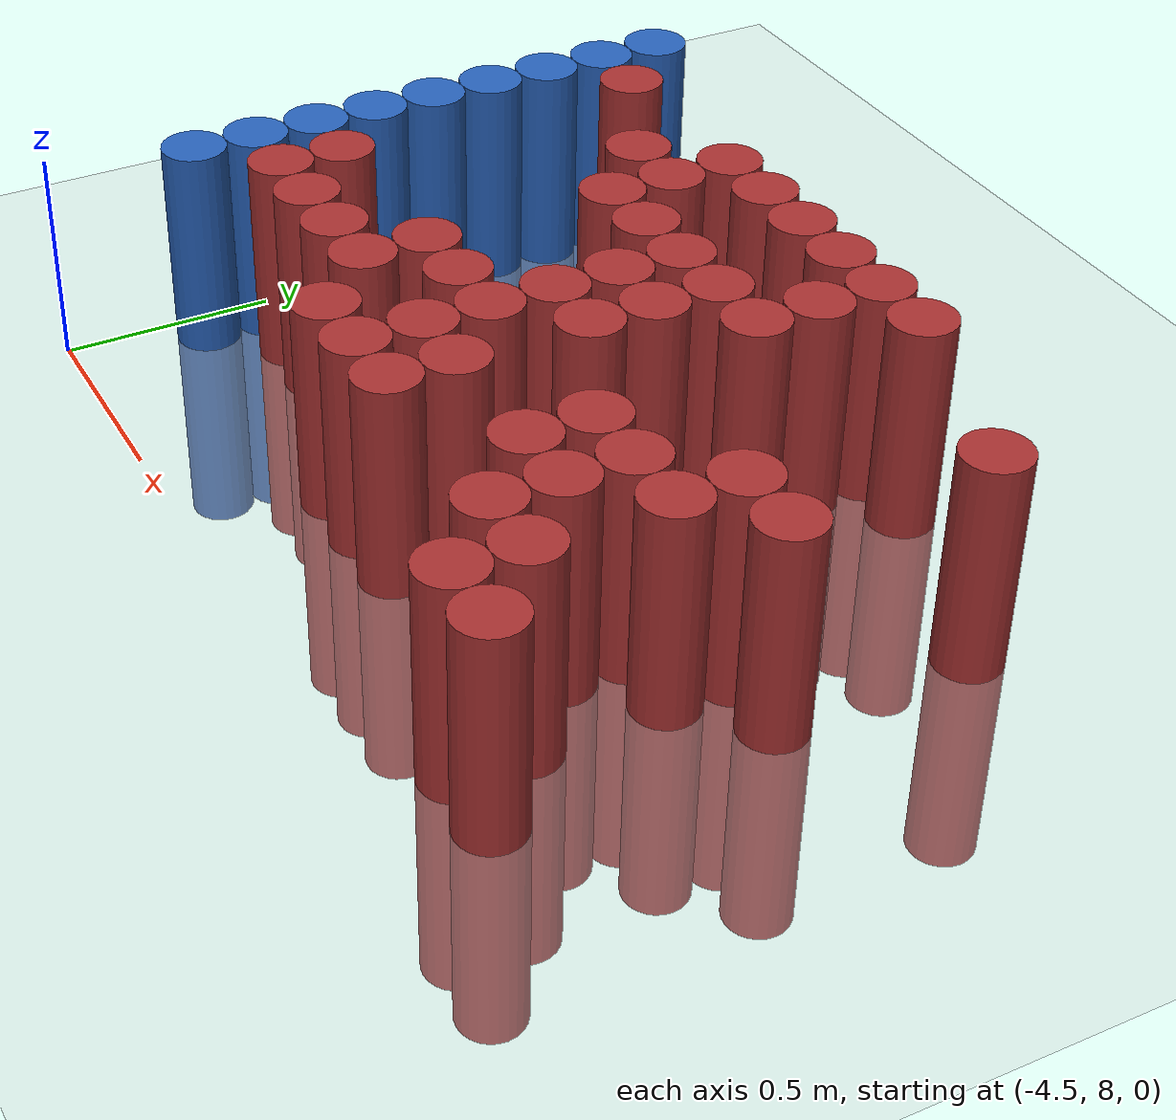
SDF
<sdf version="1.6">
 <world name="default">
  <model name="ground_plane">
   <static>1</static>
   <link name="link">
    <collision name="collision">
     <geometry><plane><normal>0 0 1</normal><size>100 100</size></plane></geometry>
     <surface><friction><ode><mu>100</mu><mu2>50</mu2></ode></friction></surface>
    </collision>
    <visual name="visual">
     <cast_shadows>0</cast_shadows>
     <geometry><plane><normal>0 0 1</normal><size>100 100</size></plane></geometry>
     <material>
      <script><uri>file://media/materials/scripts/gazebo.material</uri><name>Gazebo/Grey</name></script>
     </material>
    </visual>
   </link>
  </model>
  <model name="unit_cylinder_117">
   <static>1</static>
   <pose>-4.425000 8.325000 0.000000 0.000000 0.000000 0.000000</pose>
   <link name="link">
    <inertial>
     <mass>1</mass>
     <inertia><ixx>0.145833</ixx><ixy>0</ixy><ixz>0</ixz><iyy>0.145833</iyy><iyz>0</iyz><izz>0.125</izz></inertia>
    </inertial>
    <collision name="collision">
     <geometry><cylinder><radius>0.075000</radius><length>1</length></cylinder></geometry>
    </collision>
    <visual name="visual">
     <geometry><cylinder><radius>0.075000</radius><length>1</length></cylinder></geometry>
     <material>
      <ambient>0.152000 0.379000 0.720000 1</ambient>
      <diffuse>0.152000 0.379000 0.720000 1</diffuse>
     </material>
     <material>
      <script><name>Gazebo/Grey</name><uri>file://media/materials/scripts/gazebo.material</uri></script>
     </material>
    </visual>
   </link>
  </model>
  <model name="unit_cylinder_118">
   <static>1</static>
   <pose>-4.425000 8.475000 0.000000 0.000000 0.000000 0.000000</pose>
   <link name="link">
    <inertial>
     <mass>1</mass>
     <inertia><ixx>0.145833</ixx><ixy>0</ixy><ixz>0</ixz><iyy>0.145833</iyy><iyz>0</iyz><izz>0.125</izz></inertia>
    </inertial>
    <collision name="collision">
     <geometry><cylinder><radius>0.075000</radius><length>1</length></cylinder></geometry>
    </collision>
    <visual name="visual">
     <geometry><cylinder><radius>0.075000</radius><length>1</length></cylinder></geometry>
     <material>
      <ambient>0.152000 0.379000 0.720000 1</ambient>
      <diffuse>0.152000 0.379000 0.720000 1</diffuse>
     </material>
     <material>
      <script><name>Gazebo/Grey</name><uri>file://media/materials/scripts/gazebo.material</uri></script>
     </material>
    </visual>
   </link>
  </model>
  <model name="unit_cylinder_119">
   <static>1</static>
   <pose>-4.425000 8.625000 0.000000 0.000000 0.000000 0.000000</pose>
   <link name="link">
    <inertial>
     <mass>1</mass>
     <inertia><ixx>0.145833</ixx><ixy>0</ixy><ixz>0</ixz><iyy>0.145833</iyy><iyz>0</iyz><izz>0.125</izz></inertia>
    </inertial>
    <collision name="collision">
     <geometry><cylinder><radius>0.075000</radius><length>1</length></cylinder></geometry>
    </collision>
    <visual name="visual">
     <geometry><cylinder><radius>0.075000</radius><length>1</length></cylinder></geometry>
     <material>
      <ambient>0.152000 0.379000 0.720000 1</ambient>
      <diffuse>0.152000 0.379000 0.720000 1</diffuse>
     </material>
     <material>
      <script><name>Gazebo/Grey</name><uri>file://media/materials/scripts/gazebo.material</uri></script>
     </material>
    </visual>
   </link>
  </model>
  <model name="unit_cylinder_120">
   <static>1</static>
   <pose>-4.425000 8.775000 0.000000 0.000000 0.000000 0.000000</pose>
   <link name="link">
    <inertial>
     <mass>1</mass>
     <inertia><ixx>0.145833</ixx><ixy>0</ixy><ixz>0</ixz><iyy>0.145833</iyy><iyz>0</iyz><izz>0.125</izz></inertia>
    </inertial>
    <collision name="collision">
     <geometry><cylinder><radius>0.075000</radius><length>1</length></cylinder></geometry>
    </collision>
    <visual name="visual">
     <geometry><cylinder><radius>0.075000</radius><length>1</length></cylinder></geometry>
     <material>
      <ambient>0.152000 0.379000 0.720000 1</ambient>
      <diffuse>0.152000 0.379000 0.720000 1</diffuse>
     </material>
     <material>
      <script><name>Gazebo/Grey</name><uri>file://media/materials/scripts/gazebo.material</uri></script>
     </material>
    </visual>
   </link>
  </model>
  <model name="unit_cylinder_121">
   <static>1</static>
   <pose>-4.425000 8.925000 0.000000 0.000000 0.000000 0.000000</pose>
   <link name="link">
    <inertial>
     <mass>1</mass>
     <inertia><ixx>0.145833</ixx><ixy>0</ixy><ixz>0</ixz><iyy>0.145833</iyy><iyz>0</iyz><izz>0.125</izz></inertia>
    </inertial>
    <collision name="collision">
     <geometry><cylinder><radius>0.075000</radius><length>1</length></cylinder></geometry>
    </collision>
    <visual name="visual">
     <geometry><cylinder><radius>0.075000</radius><length>1</length></cylinder></geometry>
     <material>
      <ambient>0.152000 0.379000 0.720000 1</ambient>
      <diffuse>0.152000 0.379000 0.720000 1</diffuse>
     </material>
     <material>
      <script><name>Gazebo/Grey</name><uri>file://media/materials/scripts/gazebo.material</uri></script>
     </material>
    </visual>
   </link>
  </model>
  <model name="unit_cylinder_122">
   <static>1</static>
   <pose>-4.425000 9.075000 0.000000 0.000000 0.000000 0.000000</pose>
   <link name="link">
    <inertial>
     <mass>1</mass>
     <inertia><ixx>0.145833</ixx><ixy>0</ixy><ixz>0</ixz><iyy>0.145833</iyy><iyz>0</iyz><izz>0.125</izz></inertia>
    </inertial>
    <collision name="collision">
     <geometry><cylinder><radius>0.075000</radius><length>1</length></cylinder></geometry>
    </collision>
    <visual name="visual">
     <geometry><cylinder><radius>0.075000</radius><length>1</length></cylinder></geometry>
     <material>
      <ambient>0.152000 0.379000 0.720000 1</ambient>
      <diffuse>0.152000 0.379000 0.720000 1</diffuse>
     </material>
     <material>
      <script><name>Gazebo/Grey</name><uri>file://media/materials/scripts/gazebo.material</uri></script>
     </material>
    </visual>
   </link>
  </model>
  <model name="unit_cylinder_123">
   <static>1</static>
   <pose>-4.425000 9.225000 0.000000 0.000000 0.000000 0.000000</pose>
   <link name="link">
    <inertial>
     <mass>1</mass>
     <inertia><ixx>0.145833</ixx><ixy>0</ixy><ixz>0</ixz><iyy>0.145833</iyy><iyz>0</iyz><izz>0.125</izz></inertia>
    </inertial>
    <collision name="collision">
     <geometry><cylinder><radius>0.075000</radius><length>1</length></cylinder></geometry>
    </collision>
    <visual name="visual">
     <geometry><cylinder><radius>0.075000</radius><length>1</length></cylinder></geometry>
     <material>
      <ambient>0.152000 0.379000 0.720000 1</ambient>
      <diffuse>0.152000 0.379000 0.720000 1</diffuse>
     </material>
     <material>
      <script><name>Gazebo/Grey</name><uri>file://media/materials/scripts/gazebo.material</uri></script>
     </material>
    </visual>
   </link>
  </model>
  <model name="unit_cylinder_124">
   <static>1</static>
   <pose>-4.425000 9.375000 0.000000 0.000000 0.000000 0.000000</pose>
   <link name="link">
    <inertial>
     <mass>1</mass>
     <inertia><ixx>0.145833</ixx><ixy>0</ixy><ixz>0</ixz><iyy>0.145833</iyy><iyz>0</iyz><izz>0.125</izz></inertia>
    </inertial>
    <collision name="collision">
     <geometry><cylinder><radius>0.075000</radius><length>1</length></cylinder></geometry>
    </collision>
    <visual name="visual">
     <geometry><cylinder><radius>0.075000</radius><length>1</length></cylinder></geometry>
     <material>
      <ambient>0.152000 0.379000 0.720000 1</ambient>
      <diffuse>0.152000 0.379000 0.720000 1</diffuse>
     </material>
     <material>
      <script><name>Gazebo/Grey</name><uri>file://media/materials/scripts/gazebo.material</uri></script>
     </material>
    </visual>
   </link>
  </model>
  <model name="unit_cylinder_125">
   <static>1</static>
   <pose>-4.425000 9.525000 0.000000 0.000000 0.000000 0.000000</pose>
   <link name="link">
    <inertial>
     <mass>1</mass>
     <inertia><ixx>0.145833</ixx><ixy>0</ixy><ixz>0</ixz><iyy>0.145833</iyy><iyz>0</iyz><izz>0.125</izz></inertia>
    </inertial>
    <collision name="collision">
     <geometry><cylinder><radius>0.075000</radius><length>1</length></cylinder></geometry>
    </collision>
    <visual name="visual">
     <geometry><cylinder><radius>0.075000</radius><length>1</length></cylinder></geometry>
     <material>
      <ambient>0.152000 0.379000 0.720000 1</ambient>
      <diffuse>0.152000 0.379000 0.720000 1</diffuse>
     </material>
     <material>
      <script><name>Gazebo/Grey</name><uri>file://media/materials/scripts/gazebo.material</uri></script>
     </material>
    </visual>
   </link>
  </model>
  <model name="unit_cylinder_136">
   <static>1</static>
   <pose>-4.275000 8.475000 0.000000 0.000000 0.000000 0.000000</pose>
   <link name="link">
    <inertial>
     <mass>1</mass>
     <inertia><ixx>0.145833</ixx><ixy>0</ixy><ixz>0</ixz><iyy>0.145833</iyy><iyz>0</iyz><izz>0.125</izz></inertia>
    </inertial>
    <collision name="collision">
     <geometry><cylinder><radius>0.075000</radius><length>1</length></cylinder></geometry>
    </collision>
    <visual name="visual">
     <geometry><cylinder><radius>0.075000</radius><length>1</length></cylinder></geometry>
     <material>
      <ambient>0.648000 0.192000 0.192000 1</ambient>
      <diffuse>0.648000 0.192000 0.192000 1</diffuse>
     </material>
     <material>
      <script><name>Gazebo/Grey</name><uri>file://media/materials/scripts/gazebo.material</uri></script>
     </material>
    </visual>
   </link>
  </model>
  <model name="unit_cylinder_137">
   <static>1</static>
   <pose>-4.275000 8.625000 0.000000 0.000000 0.000000 0.000000</pose>
   <link name="link">
    <inertial>
     <mass>1</mass>
     <inertia><ixx>0.145833</ixx><ixy>0</ixy><ixz>0</ixz><iyy>0.145833</iyy><iyz>0</iyz><izz>0.125</izz></inertia>
    </inertial>
    <collision name="collision">
     <geometry><cylinder><radius>0.075000</radius><length>1</length></cylinder></geometry>
    </collision>
    <visual name="visual">
     <geometry><cylinder><radius>0.075000</radius><length>1</length></cylinder></geometry>
     <material>
      <ambient>0.648000 0.192000 0.192000 1</ambient>
      <diffuse>0.648000 0.192000 0.192000 1</diffuse>
     </material>
     <material>
      <script><name>Gazebo/Grey</name><uri>file://media/materials/scripts/gazebo.material</uri></script>
     </material>
    </visual>
   </link>
  </model>
  <model name="unit_cylinder_138">
   <static>1</static>
   <pose>-4.275000 9.375000 0.000000 0.000000 0.000000 0.000000</pose>
   <link name="link">
    <inertial>
     <mass>1</mass>
     <inertia><ixx>0.145833</ixx><ixy>0</ixy><ixz>0</ixz><iyy>0.145833</iyy><iyz>0</iyz><izz>0.125</izz></inertia>
    </inertial>
    <collision name="collision">
     <geometry><cylinder><radius>0.075000</radius><length>1</length></cylinder></geometry>
    </collision>
    <visual name="visual">
     <geometry><cylinder><radius>0.075000</radius><length>1</length></cylinder></geometry>
     <material>
      <ambient>0.648000 0.192000 0.192000 1</ambient>
      <diffuse>0.648000 0.192000 0.192000 1</diffuse>
     </material>
     <material>
      <script><name>Gazebo/Grey</name><uri>file://media/materials/scripts/gazebo.material</uri></script>
     </material>
    </visual>
   </link>
  </model>
  <model name="unit_cylinder_148">
   <static>1</static>
   <pose>-4.125000 8.475000 0.000000 0.000000 0.000000 0.000000</pose>
   <link name="link">
    <inertial>
     <mass>1</mass>
     <inertia><ixx>0.145833</ixx><ixy>0</ixy><ixz>0</ixz><iyy>0.145833</iyy><iyz>0</iyz><izz>0.125</izz></inertia>
    </inertial>
    <collision name="collision">
     <geometry><cylinder><radius>0.075000</radius><length>1</length></cylinder></geometry>
    </collision>
    <visual name="visual">
     <geometry><cylinder><radius>0.075000</radius><length>1</length></cylinder></geometry>
     <material>
      <ambient>0.648000 0.192000 0.192000 1</ambient>
      <diffuse>0.648000 0.192000 0.192000 1</diffuse>
     </material>
     <material>
      <script><name>Gazebo/Grey</name><uri>file://media/materials/scripts/gazebo.material</uri></script>
     </material>
    </visual>
   </link>
  </model>
  <model name="unit_cylinder_157">
   <static>1</static>
   <pose>-3.975000 8.475000 0.000000 0.000000 0.000000 0.000000</pose>
   <link name="link">
    <inertial>
     <mass>1</mass>
     <inertia><ixx>0.145833</ixx><ixy>0</ixy><ixz>0</ixz><iyy>0.145833</iyy><iyz>0</iyz><izz>0.125</izz></inertia>
    </inertial>
    <collision name="collision">
     <geometry><cylinder><radius>0.075000</radius><length>1</length></cylinder></geometry>
    </collision>
    <visual name="visual">
     <geometry><cylinder><radius>0.075000</radius><length>1</length></cylinder></geometry>
     <material>
      <ambient>0.648000 0.192000 0.192000 1</ambient>
      <diffuse>0.648000 0.192000 0.192000 1</diffuse>
     </material>
     <material>
      <script><name>Gazebo/Grey</name><uri>file://media/materials/scripts/gazebo.material</uri></script>
     </material>
    </visual>
   </link>
  </model>
  <model name="unit_cylinder_158">
   <static>1</static>
   <pose>-3.975000 9.225000 0.000000 0.000000 0.000000 0.000000</pose>
   <link name="link">
    <inertial>
     <mass>1</mass>
     <inertia><ixx>0.145833</ixx><ixy>0</ixy><ixz>0</ixz><iyy>0.145833</iyy><iyz>0</iyz><izz>0.125</izz></inertia>
    </inertial>
    <collision name="collision">
     <geometry><cylinder><radius>0.075000</radius><length>1</length></cylinder></geometry>
    </collision>
    <visual name="visual">
     <geometry><cylinder><radius>0.075000</radius><length>1</length></cylinder></geometry>
     <material>
      <ambient>0.648000 0.192000 0.192000 1</ambient>
      <diffuse>0.648000 0.192000 0.192000 1</diffuse>
     </material>
     <material>
      <script><name>Gazebo/Grey</name><uri>file://media/materials/scripts/gazebo.material</uri></script>
     </material>
    </visual>
   </link>
  </model>
  <model name="unit_cylinder_165">
   <static>1</static>
   <pose>-3.825000 8.475000 0.000000 0.000000 0.000000 0.000000</pose>
   <link name="link">
    <inertial>
     <mass>1</mass>
     <inertia><ixx>0.145833</ixx><ixy>0</ixy><ixz>0</ixz><iyy>0.145833</iyy><iyz>0</iyz><izz>0.125</izz></inertia>
    </inertial>
    <collision name="collision">
     <geometry><cylinder><radius>0.075000</radius><length>1</length></cylinder></geometry>
    </collision>
    <visual name="visual">
     <geometry><cylinder><radius>0.075000</radius><length>1</length></cylinder></geometry>
     <material>
      <ambient>0.648000 0.192000 0.192000 1</ambient>
      <diffuse>0.648000 0.192000 0.192000 1</diffuse>
     </material>
     <material>
      <script><name>Gazebo/Grey</name><uri>file://media/materials/scripts/gazebo.material</uri></script>
     </material>
    </visual>
   </link>
  </model>
  <model name="unit_cylinder_166">
   <static>1</static>
   <pose>-3.825000 8.625000 0.000000 0.000000 0.000000 0.000000</pose>
   <link name="link">
    <inertial>
     <mass>1</mass>
     <inertia><ixx>0.145833</ixx><ixy>0</ixy><ixz>0</ixz><iyy>0.145833</iyy><iyz>0</iyz><izz>0.125</izz></inertia>
    </inertial>
    <collision name="collision">
     <geometry><cylinder><radius>0.075000</radius><length>1</length></cylinder></geometry>
    </collision>
    <visual name="visual">
     <geometry><cylinder><radius>0.075000</radius><length>1</length></cylinder></geometry>
     <material>
      <ambient>0.648000 0.192000 0.192000 1</ambient>
      <diffuse>0.648000 0.192000 0.192000 1</diffuse>
     </material>
     <material>
      <script><name>Gazebo/Grey</name><uri>file://media/materials/scripts/gazebo.material</uri></script>
     </material>
    </visual>
   </link>
  </model>
  <model name="unit_cylinder_167">
   <static>1</static>
   <pose>-3.825000 9.075000 0.000000 0.000000 0.000000 0.000000</pose>
   <link name="link">
    <inertial>
     <mass>1</mass>
     <inertia><ixx>0.145833</ixx><ixy>0</ixy><ixz>0</ixz><iyy>0.145833</iyy><iyz>0</iyz><izz>0.125</izz></inertia>
    </inertial>
    <collision name="collision">
     <geometry><cylinder><radius>0.075000</radius><length>1</length></cylinder></geometry>
    </collision>
    <visual name="visual">
     <geometry><cylinder><radius>0.075000</radius><length>1</length></cylinder></geometry>
     <material>
      <ambient>0.648000 0.192000 0.192000 1</ambient>
      <diffuse>0.648000 0.192000 0.192000 1</diffuse>
     </material>
     <material>
      <script><name>Gazebo/Grey</name><uri>file://media/materials/scripts/gazebo.material</uri></script>
     </material>
    </visual>
   </link>
  </model>
  <model name="unit_cylinder_168">
   <static>1</static>
   <pose>-3.825000 9.225000 0.000000 0.000000 0.000000 0.000000</pose>
   <link name="link">
    <inertial>
     <mass>1</mass>
     <inertia><ixx>0.145833</ixx><ixy>0</ixy><ixz>0</ixz><iyy>0.145833</iyy><iyz>0</iyz><izz>0.125</izz></inertia>
    </inertial>
    <collision name="collision">
     <geometry><cylinder><radius>0.075000</radius><length>1</length></cylinder></geometry>
    </collision>
    <visual name="visual">
     <geometry><cylinder><radius>0.075000</radius><length>1</length></cylinder></geometry>
     <material>
      <ambient>0.648000 0.192000 0.192000 1</ambient>
      <diffuse>0.648000 0.192000 0.192000 1</diffuse>
     </material>
     <material>
      <script><name>Gazebo/Grey</name><uri>file://media/materials/scripts/gazebo.material</uri></script>
     </material>
    </visual>
   </link>
  </model>
  <model name="unit_cylinder_169">
   <static>1</static>
   <pose>-3.825000 9.375000 0.000000 0.000000 0.000000 0.000000</pose>
   <link name="link">
    <inertial>
     <mass>1</mass>
     <inertia><ixx>0.145833</ixx><ixy>0</ixy><ixz>0</ixz><iyy>0.145833</iyy><iyz>0</iyz><izz>0.125</izz></inertia>
    </inertial>
    <collision name="collision">
     <geometry><cylinder><radius>0.075000</radius><length>1</length></cylinder></geometry>
    </collision>
    <visual name="visual">
     <geometry><cylinder><radius>0.075000</radius><length>1</length></cylinder></geometry>
     <material>
      <ambient>0.648000 0.192000 0.192000 1</ambient>
      <diffuse>0.648000 0.192000 0.192000 1</diffuse>
     </material>
     <material>
      <script><name>Gazebo/Grey</name><uri>file://media/materials/scripts/gazebo.material</uri></script>
     </material>
    </visual>
   </link>
  </model>
  <model name="unit_cylinder_176">
   <static>1</static>
   <pose>-3.675000 8.325000 0.000000 0.000000 0.000000 0.000000</pose>
   <link name="link">
    <inertial>
     <mass>1</mass>
     <inertia><ixx>0.145833</ixx><ixy>0</ixy><ixz>0</ixz><iyy>0.145833</iyy><iyz>0</iyz><izz>0.125</izz></inertia>
    </inertial>
    <collision name="collision">
     <geometry><cylinder><radius>0.075000</radius><length>1</length></cylinder></geometry>
    </collision>
    <visual name="visual">
     <geometry><cylinder><radius>0.075000</radius><length>1</length></cylinder></geometry>
     <material>
      <ambient>0.648000 0.192000 0.192000 1</ambient>
      <diffuse>0.648000 0.192000 0.192000 1</diffuse>
     </material>
     <material>
      <script><name>Gazebo/Grey</name><uri>file://media/materials/scripts/gazebo.material</uri></script>
     </material>
    </visual>
   </link>
  </model>
  <model name="unit_cylinder_177">
   <static>1</static>
   <pose>-3.675000 8.625000 0.000000 0.000000 0.000000 0.000000</pose>
   <link name="link">
    <inertial>
     <mass>1</mass>
     <inertia><ixx>0.145833</ixx><ixy>0</ixy><ixz>0</ixz><iyy>0.145833</iyy><iyz>0</iyz><izz>0.125</izz></inertia>
    </inertial>
    <collision name="collision">
     <geometry><cylinder><radius>0.075000</radius><length>1</length></cylinder></geometry>
    </collision>
    <visual name="visual">
     <geometry><cylinder><radius>0.075000</radius><length>1</length></cylinder></geometry>
     <material>
      <ambient>0.648000 0.192000 0.192000 1</ambient>
      <diffuse>0.648000 0.192000 0.192000 1</diffuse>
     </material>
     <material>
      <script><name>Gazebo/Grey</name><uri>file://media/materials/scripts/gazebo.material</uri></script>
     </material>
    </visual>
   </link>
  </model>
  <model name="unit_cylinder_178">
   <static>1</static>
   <pose>-3.675000 9.075000 0.000000 0.000000 0.000000 0.000000</pose>
   <link name="link">
    <inertial>
     <mass>1</mass>
     <inertia><ixx>0.145833</ixx><ixy>0</ixy><ixz>0</ixz><iyy>0.145833</iyy><iyz>0</iyz><izz>0.125</izz></inertia>
    </inertial>
    <collision name="collision">
     <geometry><cylinder><radius>0.075000</radius><length>1</length></cylinder></geometry>
    </collision>
    <visual name="visual">
     <geometry><cylinder><radius>0.075000</radius><length>1</length></cylinder></geometry>
     <material>
      <ambient>0.648000 0.192000 0.192000 1</ambient>
      <diffuse>0.648000 0.192000 0.192000 1</diffuse>
     </material>
     <material>
      <script><name>Gazebo/Grey</name><uri>file://media/materials/scripts/gazebo.material</uri></script>
     </material>
    </visual>
   </link>
  </model>
  <model name="unit_cylinder_179">
   <static>1</static>
   <pose>-3.675000 9.375000 0.000000 0.000000 0.000000 0.000000</pose>
   <link name="link">
    <inertial>
     <mass>1</mass>
     <inertia><ixx>0.145833</ixx><ixy>0</ixy><ixz>0</ixz><iyy>0.145833</iyy><iyz>0</iyz><izz>0.125</izz></inertia>
    </inertial>
    <collision name="collision">
     <geometry><cylinder><radius>0.075000</radius><length>1</length></cylinder></geometry>
    </collision>
    <visual name="visual">
     <geometry><cylinder><radius>0.075000</radius><length>1</length></cylinder></geometry>
     <material>
      <ambient>0.648000 0.192000 0.192000 1</ambient>
      <diffuse>0.648000 0.192000 0.192000 1</diffuse>
     </material>
     <material>
      <script><name>Gazebo/Grey</name><uri>file://media/materials/scripts/gazebo.material</uri></script>
     </material>
    </visual>
   </link>
  </model>
  <model name="unit_cylinder_183">
   <static>1</static>
   <pose>-3.525000 8.325000 0.000000 0.000000 0.000000 0.000000</pose>
   <link name="link">
    <inertial>
     <mass>1</mass>
     <inertia><ixx>0.145833</ixx><ixy>0</ixy><ixz>0</ixz><iyy>0.145833</iyy><iyz>0</iyz><izz>0.125</izz></inertia>
    </inertial>
    <collision name="collision">
     <geometry><cylinder><radius>0.075000</radius><length>1</length></cylinder></geometry>
    </collision>
    <visual name="visual">
     <geometry><cylinder><radius>0.075000</radius><length>1</length></cylinder></geometry>
     <material>
      <ambient>0.648000 0.192000 0.192000 1</ambient>
      <diffuse>0.648000 0.192000 0.192000 1</diffuse>
     </material>
     <material>
      <script><name>Gazebo/Grey</name><uri>file://media/materials/scripts/gazebo.material</uri></script>
     </material>
    </visual>
   </link>
  </model>
  <model name="unit_cylinder_184">
   <static>1</static>
   <pose>-3.525000 8.475000 0.000000 0.000000 0.000000 0.000000</pose>
   <link name="link">
    <inertial>
     <mass>1</mass>
     <inertia><ixx>0.145833</ixx><ixy>0</ixy><ixz>0</ixz><iyy>0.145833</iyy><iyz>0</iyz><izz>0.125</izz></inertia>
    </inertial>
    <collision name="collision">
     <geometry><cylinder><radius>0.075000</radius><length>1</length></cylinder></geometry>
    </collision>
    <visual name="visual">
     <geometry><cylinder><radius>0.075000</radius><length>1</length></cylinder></geometry>
     <material>
      <ambient>0.648000 0.192000 0.192000 1</ambient>
      <diffuse>0.648000 0.192000 0.192000 1</diffuse>
     </material>
     <material>
      <script><name>Gazebo/Grey</name><uri>file://media/materials/scripts/gazebo.material</uri></script>
     </material>
    </visual>
   </link>
  </model>
  <model name="unit_cylinder_185">
   <static>1</static>
   <pose>-3.525000 8.625000 0.000000 0.000000 0.000000 0.000000</pose>
   <link name="link">
    <inertial>
     <mass>1</mass>
     <inertia><ixx>0.145833</ixx><ixy>0</ixy><ixz>0</ixz><iyy>0.145833</iyy><iyz>0</iyz><izz>0.125</izz></inertia>
    </inertial>
    <collision name="collision">
     <geometry><cylinder><radius>0.075000</radius><length>1</length></cylinder></geometry>
    </collision>
    <visual name="visual">
     <geometry><cylinder><radius>0.075000</radius><length>1</length></cylinder></geometry>
     <material>
      <ambient>0.648000 0.192000 0.192000 1</ambient>
      <diffuse>0.648000 0.192000 0.192000 1</diffuse>
     </material>
     <material>
      <script><name>Gazebo/Grey</name><uri>file://media/materials/scripts/gazebo.material</uri></script>
     </material>
    </visual>
   </link>
  </model>
  <model name="unit_cylinder_186">
   <static>1</static>
   <pose>-3.525000 8.775000 0.000000 0.000000 0.000000 0.000000</pose>
   <link name="link">
    <inertial>
     <mass>1</mass>
     <inertia><ixx>0.145833</ixx><ixy>0</ixy><ixz>0</ixz><iyy>0.145833</iyy><iyz>0</iyz><izz>0.125</izz></inertia>
    </inertial>
    <collision name="collision">
     <geometry><cylinder><radius>0.075000</radius><length>1</length></cylinder></geometry>
    </collision>
    <visual name="visual">
     <geometry><cylinder><radius>0.075000</radius><length>1</length></cylinder></geometry>
     <material>
      <ambient>0.648000 0.192000 0.192000 1</ambient>
      <diffuse>0.648000 0.192000 0.192000 1</diffuse>
     </material>
     <material>
      <script><name>Gazebo/Grey</name><uri>file://media/materials/scripts/gazebo.material</uri></script>
     </material>
    </visual>
   </link>
  </model>
  <model name="unit_cylinder_187">
   <static>1</static>
   <pose>-3.525000 8.925000 0.000000 0.000000 0.000000 0.000000</pose>
   <link name="link">
    <inertial>
     <mass>1</mass>
     <inertia><ixx>0.145833</ixx><ixy>0</ixy><ixz>0</ixz><iyy>0.145833</iyy><iyz>0</iyz><izz>0.125</izz></inertia>
    </inertial>
    <collision name="collision">
     <geometry><cylinder><radius>0.075000</radius><length>1</length></cylinder></geometry>
    </collision>
    <visual name="visual">
     <geometry><cylinder><radius>0.075000</radius><length>1</length></cylinder></geometry>
     <material>
      <ambient>0.648000 0.192000 0.192000 1</ambient>
      <diffuse>0.648000 0.192000 0.192000 1</diffuse>
     </material>
     <material>
      <script><name>Gazebo/Grey</name><uri>file://media/materials/scripts/gazebo.material</uri></script>
     </material>
    </visual>
   </link>
  </model>
  <model name="unit_cylinder_188">
   <static>1</static>
   <pose>-3.525000 9.075000 0.000000 0.000000 0.000000 0.000000</pose>
   <link name="link">
    <inertial>
     <mass>1</mass>
     <inertia><ixx>0.145833</ixx><ixy>0</ixy><ixz>0</ixz><iyy>0.145833</iyy><iyz>0</iyz><izz>0.125</izz></inertia>
    </inertial>
    <collision name="collision">
     <geometry><cylinder><radius>0.075000</radius><length>1</length></cylinder></geometry>
    </collision>
    <visual name="visual">
     <geometry><cylinder><radius>0.075000</radius><length>1</length></cylinder></geometry>
     <material>
      <ambient>0.648000 0.192000 0.192000 1</ambient>
      <diffuse>0.648000 0.192000 0.192000 1</diffuse>
     </material>
     <material>
      <script><name>Gazebo/Grey</name><uri>file://media/materials/scripts/gazebo.material</uri></script>
     </material>
    </visual>
   </link>
  </model>
  <model name="unit_cylinder_189">
   <static>1</static>
   <pose>-3.525000 9.375000 0.000000 0.000000 0.000000 0.000000</pose>
   <link name="link">
    <inertial>
     <mass>1</mass>
     <inertia><ixx>0.145833</ixx><ixy>0</ixy><ixz>0</ixz><iyy>0.145833</iyy><iyz>0</iyz><izz>0.125</izz></inertia>
    </inertial>
    <collision name="collision">
     <geometry><cylinder><radius>0.075000</radius><length>1</length></cylinder></geometry>
    </collision>
    <visual name="visual">
     <geometry><cylinder><radius>0.075000</radius><length>1</length></cylinder></geometry>
     <material>
      <ambient>0.648000 0.192000 0.192000 1</ambient>
      <diffuse>0.648000 0.192000 0.192000 1</diffuse>
     </material>
     <material>
      <script><name>Gazebo/Grey</name><uri>file://media/materials/scripts/gazebo.material</uri></script>
     </material>
    </visual>
   </link>
  </model>
  <model name="unit_cylinder_191">
   <static>1</static>
   <pose>-3.375000 8.325000 0.000000 0.000000 0.000000 0.000000</pose>
   <link name="link">
    <inertial>
     <mass>1</mass>
     <inertia><ixx>0.145833</ixx><ixy>0</ixy><ixz>0</ixz><iyy>0.145833</iyy><iyz>0</iyz><izz>0.125</izz></inertia>
    </inertial>
    <collision name="collision">
     <geometry><cylinder><radius>0.075000</radius><length>1</length></cylinder></geometry>
    </collision>
    <visual name="visual">
     <geometry><cylinder><radius>0.075000</radius><length>1</length></cylinder></geometry>
     <material>
      <ambient>0.648000 0.192000 0.192000 1</ambient>
      <diffuse>0.648000 0.192000 0.192000 1</diffuse>
     </material>
     <material>
      <script><name>Gazebo/Grey</name><uri>file://media/materials/scripts/gazebo.material</uri></script>
     </material>
    </visual>
   </link>
  </model>
  <model name="unit_cylinder_192">
   <static>1</static>
   <pose>-3.375000 8.475000 0.000000 0.000000 0.000000 0.000000</pose>
   <link name="link">
    <inertial>
     <mass>1</mass>
     <inertia><ixx>0.145833</ixx><ixy>0</ixy><ixz>0</ixz><iyy>0.145833</iyy><iyz>0</iyz><izz>0.125</izz></inertia>
    </inertial>
    <collision name="collision">
     <geometry><cylinder><radius>0.075000</radius><length>1</length></cylinder></geometry>
    </collision>
    <visual name="visual">
     <geometry><cylinder><radius>0.075000</radius><length>1</length></cylinder></geometry>
     <material>
      <ambient>0.648000 0.192000 0.192000 1</ambient>
      <diffuse>0.648000 0.192000 0.192000 1</diffuse>
     </material>
     <material>
      <script><name>Gazebo/Grey</name><uri>file://media/materials/scripts/gazebo.material</uri></script>
     </material>
    </visual>
   </link>
  </model>
  <model name="unit_cylinder_193">
   <static>1</static>
   <pose>-3.375000 8.775000 0.000000 0.000000 0.000000 0.000000</pose>
   <link name="link">
    <inertial>
     <mass>1</mass>
     <inertia><ixx>0.145833</ixx><ixy>0</ixy><ixz>0</ixz><iyy>0.145833</iyy><iyz>0</iyz><izz>0.125</izz></inertia>
    </inertial>
    <collision name="collision">
     <geometry><cylinder><radius>0.075000</radius><length>1</length></cylinder></geometry>
    </collision>
    <visual name="visual">
     <geometry><cylinder><radius>0.075000</radius><length>1</length></cylinder></geometry>
     <material>
      <ambient>0.648000 0.192000 0.192000 1</ambient>
      <diffuse>0.648000 0.192000 0.192000 1</diffuse>
     </material>
     <material>
      <script><name>Gazebo/Grey</name><uri>file://media/materials/scripts/gazebo.material</uri></script>
     </material>
    </visual>
   </link>
  </model>
  <model name="unit_cylinder_194">
   <static>1</static>
   <pose>-3.375000 8.925000 0.000000 0.000000 0.000000 0.000000</pose>
   <link name="link">
    <inertial>
     <mass>1</mass>
     <inertia><ixx>0.145833</ixx><ixy>0</ixy><ixz>0</ixz><iyy>0.145833</iyy><iyz>0</iyz><izz>0.125</izz></inertia>
    </inertial>
    <collision name="collision">
     <geometry><cylinder><radius>0.075000</radius><length>1</length></cylinder></geometry>
    </collision>
    <visual name="visual">
     <geometry><cylinder><radius>0.075000</radius><length>1</length></cylinder></geometry>
     <material>
      <ambient>0.648000 0.192000 0.192000 1</ambient>
      <diffuse>0.648000 0.192000 0.192000 1</diffuse>
     </material>
     <material>
      <script><name>Gazebo/Grey</name><uri>file://media/materials/scripts/gazebo.material</uri></script>
     </material>
    </visual>
   </link>
  </model>
  <model name="unit_cylinder_195">
   <static>1</static>
   <pose>-3.375000 9.075000 0.000000 0.000000 0.000000 0.000000</pose>
   <link name="link">
    <inertial>
     <mass>1</mass>
     <inertia><ixx>0.145833</ixx><ixy>0</ixy><ixz>0</ixz><iyy>0.145833</iyy><iyz>0</iyz><izz>0.125</izz></inertia>
    </inertial>
    <collision name="collision">
     <geometry><cylinder><radius>0.075000</radius><length>1</length></cylinder></geometry>
    </collision>
    <visual name="visual">
     <geometry><cylinder><radius>0.075000</radius><length>1</length></cylinder></geometry>
     <material>
      <ambient>0.648000 0.192000 0.192000 1</ambient>
      <diffuse>0.648000 0.192000 0.192000 1</diffuse>
     </material>
     <material>
      <script><name>Gazebo/Grey</name><uri>file://media/materials/scripts/gazebo.material</uri></script>
     </material>
    </visual>
   </link>
  </model>
  <model name="unit_cylinder_196">
   <static>1</static>
   <pose>-3.375000 9.375000 0.000000 0.000000 0.000000 0.000000</pose>
   <link name="link">
    <inertial>
     <mass>1</mass>
     <inertia><ixx>0.145833</ixx><ixy>0</ixy><ixz>0</ixz><iyy>0.145833</iyy><iyz>0</iyz><izz>0.125</izz></inertia>
    </inertial>
    <collision name="collision">
     <geometry><cylinder><radius>0.075000</radius><length>1</length></cylinder></geometry>
    </collision>
    <visual name="visual">
     <geometry><cylinder><radius>0.075000</radius><length>1</length></cylinder></geometry>
     <material>
      <ambient>0.648000 0.192000 0.192000 1</ambient>
      <diffuse>0.648000 0.192000 0.192000 1</diffuse>
     </material>
     <material>
      <script><name>Gazebo/Grey</name><uri>file://media/materials/scripts/gazebo.material</uri></script>
     </material>
    </visual>
   </link>
  </model>
  <model name="unit_cylinder_200">
   <static>1</static>
   <pose>-3.225000 9.075000 0.000000 0.000000 0.000000 0.000000</pose>
   <link name="link">
    <inertial>
     <mass>1</mass>
     <inertia><ixx>0.145833</ixx><ixy>0</ixy><ixz>0</ixz><iyy>0.145833</iyy><iyz>0</iyz><izz>0.125</izz></inertia>
    </inertial>
    <collision name="collision">
     <geometry><cylinder><radius>0.075000</radius><length>1</length></cylinder></geometry>
    </collision>
    <visual name="visual">
     <geometry><cylinder><radius>0.075000</radius><length>1</length></cylinder></geometry>
     <material>
      <ambient>0.648000 0.192000 0.192000 1</ambient>
      <diffuse>0.648000 0.192000 0.192000 1</diffuse>
     </material>
     <material>
      <script><name>Gazebo/Grey</name><uri>file://media/materials/scripts/gazebo.material</uri></script>
     </material>
    </visual>
   </link>
  </model>
  <model name="unit_cylinder_201">
   <static>1</static>
   <pose>-3.225000 9.225000 0.000000 0.000000 0.000000 0.000000</pose>
   <link name="link">
    <inertial>
     <mass>1</mass>
     <inertia><ixx>0.145833</ixx><ixy>0</ixy><ixz>0</ixz><iyy>0.145833</iyy><iyz>0</iyz><izz>0.125</izz></inertia>
    </inertial>
    <collision name="collision">
     <geometry><cylinder><radius>0.075000</radius><length>1</length></cylinder></geometry>
    </collision>
    <visual name="visual">
     <geometry><cylinder><radius>0.075000</radius><length>1</length></cylinder></geometry>
     <material>
      <ambient>0.648000 0.192000 0.192000 1</ambient>
      <diffuse>0.648000 0.192000 0.192000 1</diffuse>
     </material>
     <material>
      <script><name>Gazebo/Grey</name><uri>file://media/materials/scripts/gazebo.material</uri></script>
     </material>
    </visual>
   </link>
  </model>
  <model name="unit_cylinder_202">
   <static>1</static>
   <pose>-3.225000 9.375000 0.000000 0.000000 0.000000 0.000000</pose>
   <link name="link">
    <inertial>
     <mass>1</mass>
     <inertia><ixx>0.145833</ixx><ixy>0</ixy><ixz>0</ixz><iyy>0.145833</iyy><iyz>0</iyz><izz>0.125</izz></inertia>
    </inertial>
    <collision name="collision">
     <geometry><cylinder><radius>0.075000</radius><length>1</length></cylinder></geometry>
    </collision>
    <visual name="visual">
     <geometry><cylinder><radius>0.075000</radius><length>1</length></cylinder></geometry>
     <material>
      <ambient>0.648000 0.192000 0.192000 1</ambient>
      <diffuse>0.648000 0.192000 0.192000 1</diffuse>
     </material>
     <material>
      <script><name>Gazebo/Grey</name><uri>file://media/materials/scripts/gazebo.material</uri></script>
     </material>
    </visual>
   </link>
  </model>
  <model name="unit_cylinder_207">
   <static>1</static>
   <pose>-3.075000 8.475000 0.000000 0.000000 0.000000 0.000000</pose>
   <link name="link">
    <inertial>
     <mass>1</mass>
     <inertia><ixx>0.145833</ixx><ixy>0</ixy><ixz>0</ixz><iyy>0.145833</iyy><iyz>0</iyz><izz>0.125</izz></inertia>
    </inertial>
    <collision name="collision">
     <geometry><cylinder><radius>0.075000</radius><length>1</length></cylinder></geometry>
    </collision>
    <visual name="visual">
     <geometry><cylinder><radius>0.075000</radius><length>1</length></cylinder></geometry>
     <material>
      <ambient>0.648000 0.192000 0.192000 1</ambient>
      <diffuse>0.648000 0.192000 0.192000 1</diffuse>
     </material>
     <material>
      <script><name>Gazebo/Grey</name><uri>file://media/materials/scripts/gazebo.material</uri></script>
     </material>
    </visual>
   </link>
  </model>
  <model name="unit_cylinder_208">
   <static>1</static>
   <pose>-3.075000 8.625000 0.000000 0.000000 0.000000 0.000000</pose>
   <link name="link">
    <inertial>
     <mass>1</mass>
     <inertia><ixx>0.145833</ixx><ixy>0</ixy><ixz>0</ixz><iyy>0.145833</iyy><iyz>0</iyz><izz>0.125</izz></inertia>
    </inertial>
    <collision name="collision">
     <geometry><cylinder><radius>0.075000</radius><length>1</length></cylinder></geometry>
    </collision>
    <visual name="visual">
     <geometry><cylinder><radius>0.075000</radius><length>1</length></cylinder></geometry>
     <material>
      <ambient>0.648000 0.192000 0.192000 1</ambient>
      <diffuse>0.648000 0.192000 0.192000 1</diffuse>
     </material>
     <material>
      <script><name>Gazebo/Grey</name><uri>file://media/materials/scripts/gazebo.material</uri></script>
     </material>
    </visual>
   </link>
  </model>
  <model name="unit_cylinder_209">
   <static>1</static>
   <pose>-3.075000 9.375000 0.000000 0.000000 0.000000 0.000000</pose>
   <link name="link">
    <inertial>
     <mass>1</mass>
     <inertia><ixx>0.145833</ixx><ixy>0</ixy><ixz>0</ixz><iyy>0.145833</iyy><iyz>0</iyz><izz>0.125</izz></inertia>
    </inertial>
    <collision name="collision">
     <geometry><cylinder><radius>0.075000</radius><length>1</length></cylinder></geometry>
    </collision>
    <visual name="visual">
     <geometry><cylinder><radius>0.075000</radius><length>1</length></cylinder></geometry>
     <material>
      <ambient>0.648000 0.192000 0.192000 1</ambient>
      <diffuse>0.648000 0.192000 0.192000 1</diffuse>
     </material>
     <material>
      <script><name>Gazebo/Grey</name><uri>file://media/materials/scripts/gazebo.material</uri></script>
     </material>
    </visual>
   </link>
  </model>
  <model name="unit_cylinder_219">
   <static>1</static>
   <pose>-2.925000 8.325000 0.000000 0.000000 0.000000 0.000000</pose>
   <link name="link">
    <inertial>
     <mass>1</mass>
     <inertia><ixx>0.145833</ixx><ixy>0</ixy><ixz>0</ixz><iyy>0.145833</iyy><iyz>0</iyz><izz>0.125</izz></inertia>
    </inertial>
    <collision name="collision">
     <geometry><cylinder><radius>0.075000</radius><length>1</length></cylinder></geometry>
    </collision>
    <visual name="visual">
     <geometry><cylinder><radius>0.075000</radius><length>1</length></cylinder></geometry>
     <material>
      <ambient>0.648000 0.192000 0.192000 1</ambient>
      <diffuse>0.648000 0.192000 0.192000 1</diffuse>
     </material>
     <material>
      <script><name>Gazebo/Grey</name><uri>file://media/materials/scripts/gazebo.material</uri></script>
     </material>
    </visual>
   </link>
  </model>
  <model name="unit_cylinder_220">
   <static>1</static>
   <pose>-2.925000 8.475000 0.000000 0.000000 0.000000 0.000000</pose>
   <link name="link">
    <inertial>
     <mass>1</mass>
     <inertia><ixx>0.145833</ixx><ixy>0</ixy><ixz>0</ixz><iyy>0.145833</iyy><iyz>0</iyz><izz>0.125</izz></inertia>
    </inertial>
    <collision name="collision">
     <geometry><cylinder><radius>0.075000</radius><length>1</length></cylinder></geometry>
    </collision>
    <visual name="visual">
     <geometry><cylinder><radius>0.075000</radius><length>1</length></cylinder></geometry>
     <material>
      <ambient>0.648000 0.192000 0.192000 1</ambient>
      <diffuse>0.648000 0.192000 0.192000 1</diffuse>
     </material>
     <material>
      <script><name>Gazebo/Grey</name><uri>file://media/materials/scripts/gazebo.material</uri></script>
     </material>
    </visual>
   </link>
  </model>
  <model name="unit_cylinder_221">
   <static>1</static>
   <pose>-2.925000 8.625000 0.000000 0.000000 0.000000 0.000000</pose>
   <link name="link">
    <inertial>
     <mass>1</mass>
     <inertia><ixx>0.145833</ixx><ixy>0</ixy><ixz>0</ixz><iyy>0.145833</iyy><iyz>0</iyz><izz>0.125</izz></inertia>
    </inertial>
    <collision name="collision">
     <geometry><cylinder><radius>0.075000</radius><length>1</length></cylinder></geometry>
    </collision>
    <visual name="visual">
     <geometry><cylinder><radius>0.075000</radius><length>1</length></cylinder></geometry>
     <material>
      <ambient>0.648000 0.192000 0.192000 1</ambient>
      <diffuse>0.648000 0.192000 0.192000 1</diffuse>
     </material>
     <material>
      <script><name>Gazebo/Grey</name><uri>file://media/materials/scripts/gazebo.material</uri></script>
     </material>
    </visual>
   </link>
  </model>
  <model name="unit_cylinder_229">
   <static>1</static>
   <pose>-2.775000 8.175000 0.000000 0.000000 0.000000 0.000000</pose>
   <link name="link">
    <inertial>
     <mass>1</mass>
     <inertia><ixx>0.145833</ixx><ixy>0</ixy><ixz>0</ixz><iyy>0.145833</iyy><iyz>0</iyz><izz>0.125</izz></inertia>
    </inertial>
    <collision name="collision">
     <geometry><cylinder><radius>0.075000</radius><length>1</length></cylinder></geometry>
    </collision>
    <visual name="visual">
     <geometry><cylinder><radius>0.075000</radius><length>1</length></cylinder></geometry>
     <material>
      <ambient>0.648000 0.192000 0.192000 1</ambient>
      <diffuse>0.648000 0.192000 0.192000 1</diffuse>
     </material>
     <material>
      <script><name>Gazebo/Grey</name><uri>file://media/materials/scripts/gazebo.material</uri></script>
     </material>
    </visual>
   </link>
  </model>
  <model name="unit_cylinder_230">
   <static>1</static>
   <pose>-2.775000 8.325000 0.000000 0.000000 0.000000 0.000000</pose>
   <link name="link">
    <inertial>
     <mass>1</mass>
     <inertia><ixx>0.145833</ixx><ixy>0</ixy><ixz>0</ixz><iyy>0.145833</iyy><iyz>0</iyz><izz>0.125</izz></inertia>
    </inertial>
    <collision name="collision">
     <geometry><cylinder><radius>0.075000</radius><length>1</length></cylinder></geometry>
    </collision>
    <visual name="visual">
     <geometry><cylinder><radius>0.075000</radius><length>1</length></cylinder></geometry>
     <material>
      <ambient>0.648000 0.192000 0.192000 1</ambient>
      <diffuse>0.648000 0.192000 0.192000 1</diffuse>
     </material>
     <material>
      <script><name>Gazebo/Grey</name><uri>file://media/materials/scripts/gazebo.material</uri></script>
     </material>
    </visual>
   </link>
  </model>
  <model name="unit_cylinder_231">
   <static>1</static>
   <pose>-2.775000 8.625000 0.000000 0.000000 0.000000 0.000000</pose>
   <link name="link">
    <inertial>
     <mass>1</mass>
     <inertia><ixx>0.145833</ixx><ixy>0</ixy><ixz>0</ixz><iyy>0.145833</iyy><iyz>0</iyz><izz>0.125</izz></inertia>
    </inertial>
    <collision name="collision">
     <geometry><cylinder><radius>0.075000</radius><length>1</length></cylinder></geometry>
    </collision>
    <visual name="visual">
     <geometry><cylinder><radius>0.075000</radius><length>1</length></cylinder></geometry>
     <material>
      <ambient>0.648000 0.192000 0.192000 1</ambient>
      <diffuse>0.648000 0.192000 0.192000 1</diffuse>
     </material>
     <material>
      <script><name>Gazebo/Grey</name><uri>file://media/materials/scripts/gazebo.material</uri></script>
     </material>
    </visual>
   </link>
  </model>
  <model name="unit_cylinder_232">
   <static>1</static>
   <pose>-2.775000 8.775000 0.000000 0.000000 0.000000 0.000000</pose>
   <link name="link">
    <inertial>
     <mass>1</mass>
     <inertia><ixx>0.145833</ixx><ixy>0</ixy><ixz>0</ixz><iyy>0.145833</iyy><iyz>0</iyz><izz>0.125</izz></inertia>
    </inertial>
    <collision name="collision">
     <geometry><cylinder><radius>0.075000</radius><length>1</length></cylinder></geometry>
    </collision>
    <visual name="visual">
     <geometry><cylinder><radius>0.075000</radius><length>1</length></cylinder></geometry>
     <material>
      <ambient>0.648000 0.192000 0.192000 1</ambient>
      <diffuse>0.648000 0.192000 0.192000 1</diffuse>
     </material>
     <material>
      <script><name>Gazebo/Grey</name><uri>file://media/materials/scripts/gazebo.material</uri></script>
     </material>
    </visual>
   </link>
  </model>
  <model name="unit_cylinder_237">
   <static>1</static>
   <pose>-2.625000 8.175000 0.000000 0.000000 0.000000 0.000000</pose>
   <link name="link">
    <inertial>
     <mass>1</mass>
     <inertia><ixx>0.145833</ixx><ixy>0</ixy><ixz>0</ixz><iyy>0.145833</iyy><iyz>0</iyz><izz>0.125</izz></inertia>
    </inertial>
    <collision name="collision">
     <geometry><cylinder><radius>0.075000</radius><length>1</length></cylinder></geometry>
    </collision>
    <visual name="visual">
     <geometry><cylinder><radius>0.075000</radius><length>1</length></cylinder></geometry>
     <material>
      <ambient>0.648000 0.192000 0.192000 1</ambient>
      <diffuse>0.648000 0.192000 0.192000 1</diffuse>
     </material>
     <material>
      <script><name>Gazebo/Grey</name><uri>file://media/materials/scripts/gazebo.material</uri></script>
     </material>
    </visual>
   </link>
  </model>
  <model name="unit_cylinder_238">
   <static>1</static>
   <pose>-2.625000 8.775000 0.000000 0.000000 0.000000 0.000000</pose>
   <link name="link">
    <inertial>
     <mass>1</mass>
     <inertia><ixx>0.145833</ixx><ixy>0</ixy><ixz>0</ixz><iyy>0.145833</iyy><iyz>0</iyz><izz>0.125</izz></inertia>
    </inertial>
    <collision name="collision">
     <geometry><cylinder><radius>0.075000</radius><length>1</length></cylinder></geometry>
    </collision>
    <visual name="visual">
     <geometry><cylinder><radius>0.075000</radius><length>1</length></cylinder></geometry>
     <material>
      <ambient>0.648000 0.192000 0.192000 1</ambient>
      <diffuse>0.648000 0.192000 0.192000 1</diffuse>
     </material>
     <material>
      <script><name>Gazebo/Grey</name><uri>file://media/materials/scripts/gazebo.material</uri></script>
     </material>
    </visual>
   </link>
  </model>
  <model name="unit_cylinder_239">
   <static>1</static>
   <pose>-2.625000 9.225000 0.000000 0.000000 0.000000 0.000000</pose>
   <link name="link">
    <inertial>
     <mass>1</mass>
     <inertia><ixx>0.145833</ixx><ixy>0</ixy><ixz>0</ixz><iyy>0.145833</iyy><iyz>0</iyz><izz>0.125</izz></inertia>
    </inertial>
    <collision name="collision">
     <geometry><cylinder><radius>0.075000</radius><length>1</length></cylinder></geometry>
    </collision>
    <visual name="visual">
     <geometry><cylinder><radius>0.075000</radius><length>1</length></cylinder></geometry>
     <material>
      <ambient>0.648000 0.192000 0.192000 1</ambient>
      <diffuse>0.648000 0.192000 0.192000 1</diffuse>
     </material>
     <material>
      <script><name>Gazebo/Grey</name><uri>file://media/materials/scripts/gazebo.material</uri></script>
     </material>
    </visual>
   </link>
  </model>
 </world>
</sdf>
